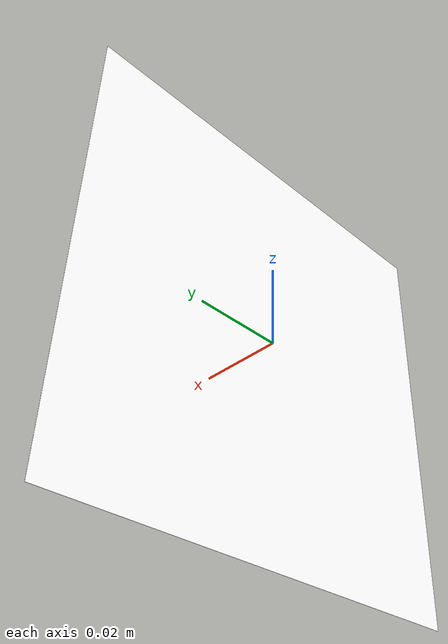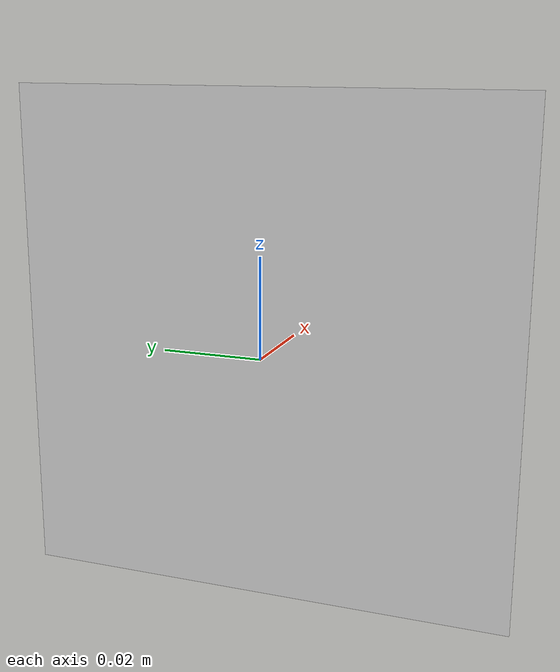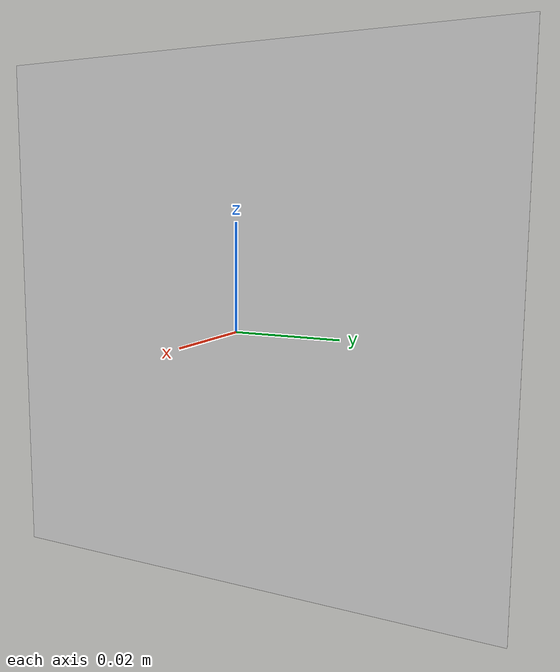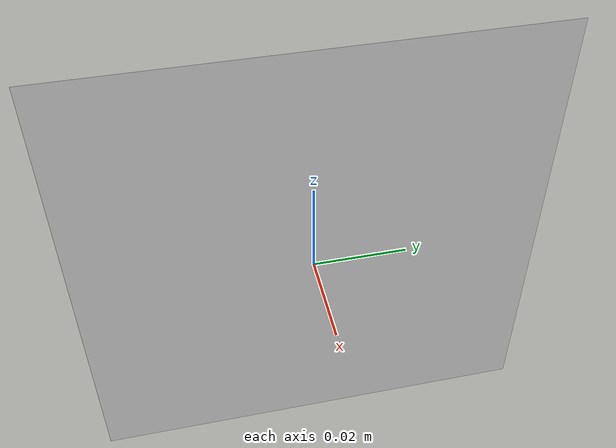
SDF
<?xml version="1.0" encoding="UTF-8"?>
<sdf version='1.9'>
  <model name='arucotag'>
    <static>true</static>
    <pose>0 0 0.001 0 0 0</pose>
    <link name='base'>
      <visual name='base_visual'>
        <geometry>
          <plane>
            <normal>1 0 0 </normal>
            <size>0.1 0.1</size>
          </plane>
        </geometry>
        <material>
          <diffuse>1 1 1 1</diffuse>
          <specular>0.4 0.4 0.4 1</specular>
          <pbr>
            <metal>
              <albedo_map>model://arucotag/aruco-201.png</albedo_map>
            </metal>
          </pbr>
        </material>
      </visual>
    </link>
  </model>
</sdf>
